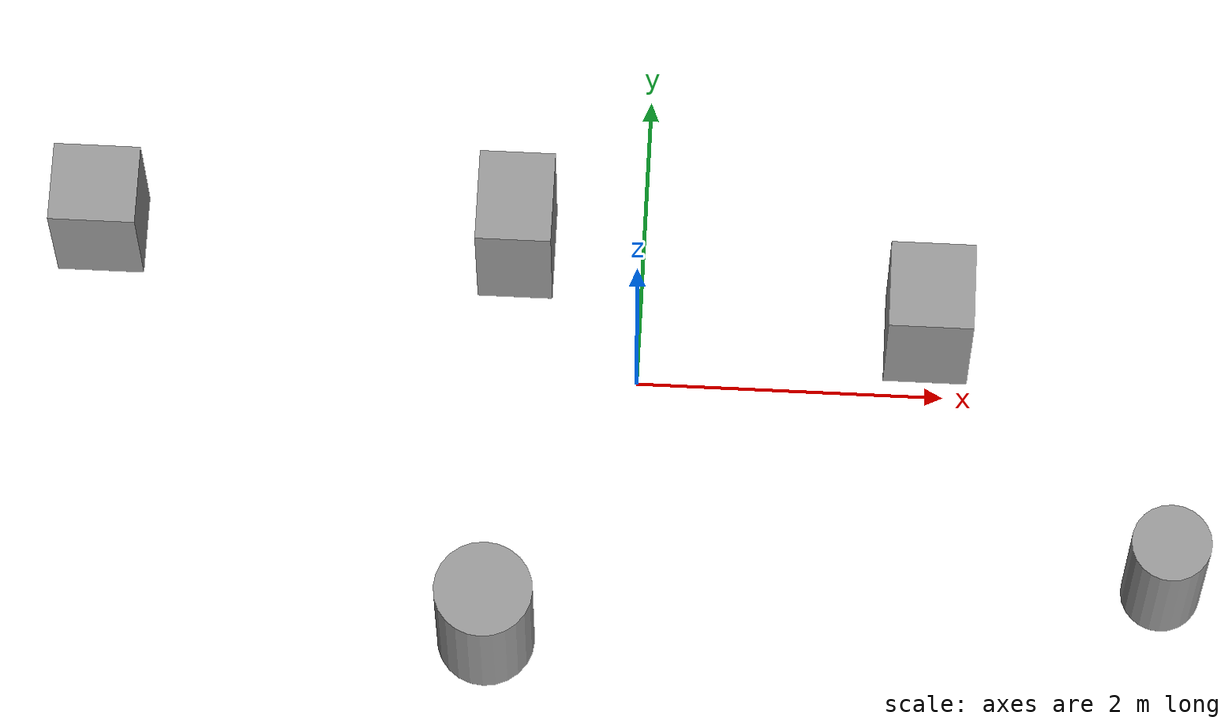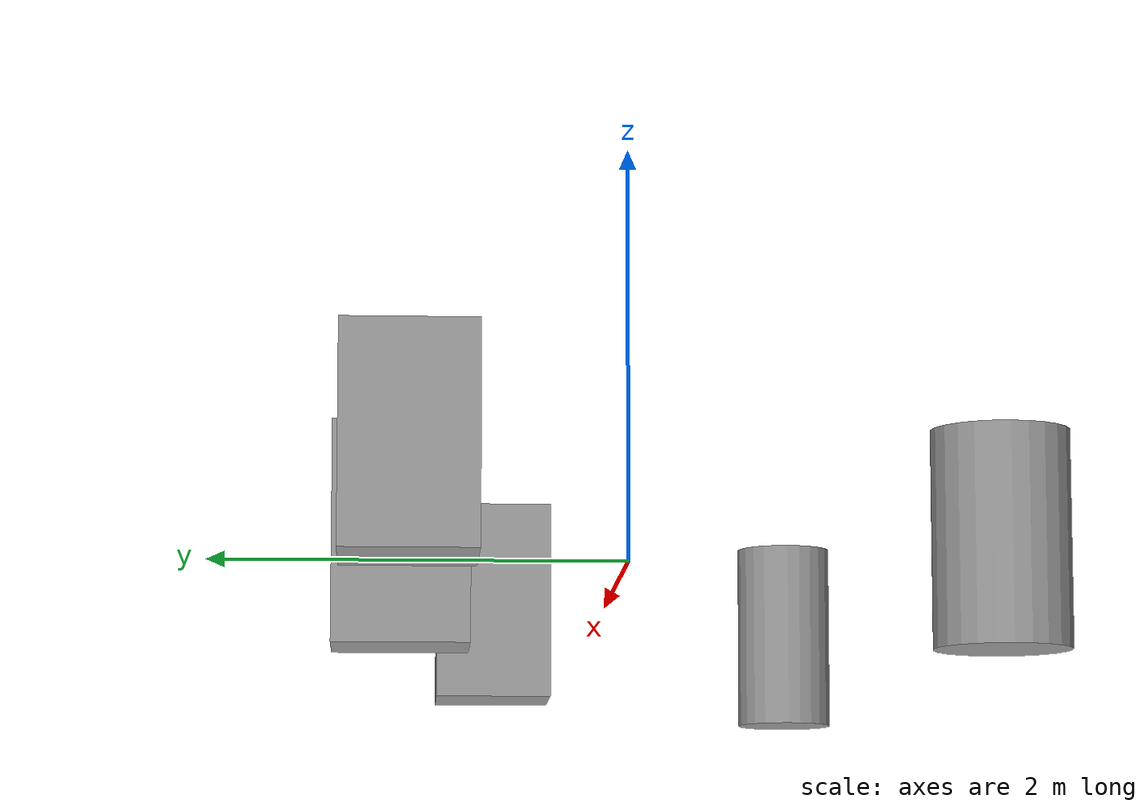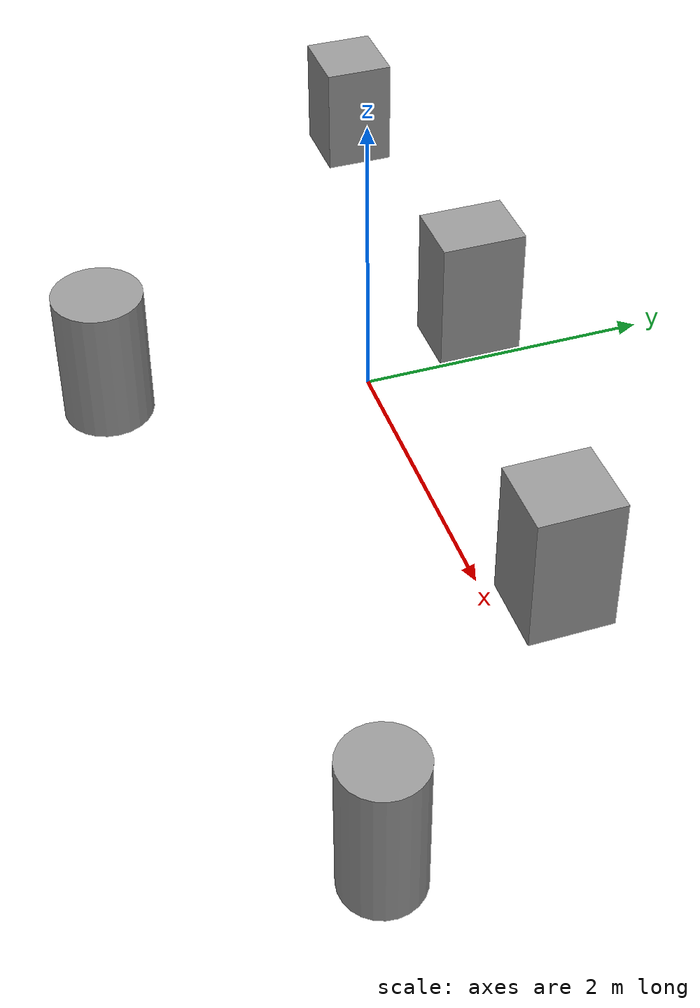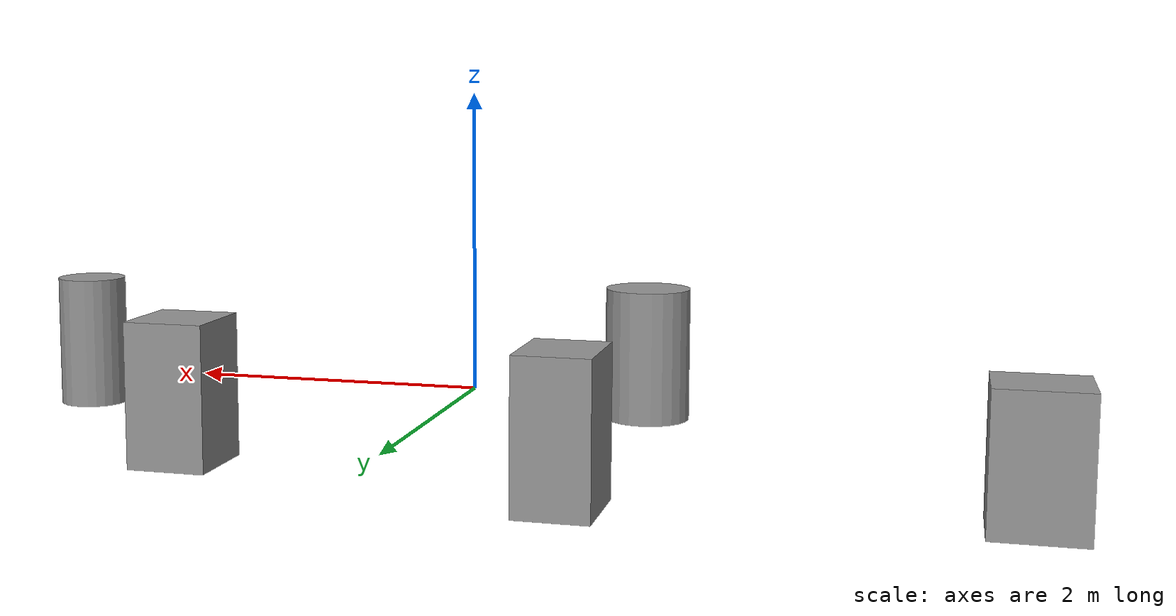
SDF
<?xml version='1.0'?>
<sdf version='1.7'>
  <model name='object_room'>
    <link name='link_0'>
      <inertial>
        <mass>0.265206</mass>
        <inertia>
          <ixx>0.0229739</ixx>
          <ixy>0</ixy>
          <ixz>0</ixz>
          <iyy>0.0238423</iyy>
          <iyz>0</iyz>
          <izz>0.0135381</izz>
        </inertia>
        <pose>0 0 0 0 -0 0</pose>
      </inertial>
      <pose>-3.616 1.06808 0 0 -0 0</pose>
      <visual name='visual'>
        <pose>0 0 0 0 -0 0</pose>
        <geometry>
          <box>
            <size>0.570906 0.535385 0.867686</size>
          </box>
        </geometry>
        <material>
          <lighting>1</lighting>
          <script>
            <uri>file://media/materials/scripts/gazebo.material</uri>
            <name>Gazebo/Grey</name>
          </script>
          <shader type='pixel'/>
        </material>
        <transparency>0</transparency>
        <cast_shadows>1</cast_shadows>
      </visual>
      <collision name='collision'>
        <laser_retro>0</laser_retro>
        <max_contacts>10</max_contacts>
        <pose>0 0 0 0 -0 0</pose>
        <geometry>
          <box>
            <size>0.570906 0.535385 0.867686</size>
          </box>
        </geometry>
        <surface>
          <friction>
            <ode>
              <mu>1</mu>
              <mu2>1</mu2>
              <fdir1>0 0 0</fdir1>
              <slip1>0</slip1>
              <slip2>0</slip2>
            </ode>
            <torsional>
              <coefficient>1</coefficient>
              <patch_radius>0</patch_radius>
              <surface_radius>0</surface_radius>
              <use_patch_radius>1</use_patch_radius>
              <ode>
                <slip>0</slip>
              </ode>
            </torsional>
          </friction>
          <bounce>
            <restitution_coefficient>0</restitution_coefficient>
            <threshold>1e+06</threshold>
          </bounce>
          <contact>
            <collide_without_contact>0</collide_without_contact>
            <collide_without_contact_bitmask>1</collide_without_contact_bitmask>
            <collide_bitmask>1</collide_bitmask>
            <ode>
              <soft_cfm>0</soft_cfm>
              <soft_erp>0.2</soft_erp>
              <kp>1e+13</kp>
              <kd>1</kd>
              <max_vel>0.01</max_vel>
              <min_depth>0</min_depth>
            </ode>
            <bullet>
              <split_impulse>1</split_impulse>
              <split_impulse_penetration_threshold>-0.01</split_impulse_penetration_threshold>
              <soft_cfm>0</soft_cfm>
              <soft_erp>0.2</soft_erp>
              <kp>1e+13</kp>
              <kd>1</kd>
            </bullet>
          </contact>
        </surface>
      </collision>
    </link>
    <link name='link_1'>
      <inertial>
        <mass>0.308886</mass>
        <inertia>
          <ixx>0.0356944</ixx>
          <ixy>0</ixy>
          <ixz>0</ixz>
          <iyy>0.0320914</iyy>
          <iyz>0</iyz>
          <izz>0.0163048</izz>
        </inertia>
        <pose>0 0 0 0 -0 0</pose>
      </inertial>
      <pose>-0.851352 1.08492 0 0 -0 0</pose>
      <visual name='visual'>
        <pose>0 0 0 0 -0 0</pose>
        <geometry>
          <box>
            <size>0.496716 0.621854 1</size>
          </box>
        </geometry>
        <material>
          <lighting>1</lighting>
          <script>
            <uri>file://media/materials/scripts/gazebo.material</uri>
            <name>Gazebo/Grey</name>
          </script>
          <shader type='pixel'/>
        </material>
        <transparency>0</transparency>
        <cast_shadows>1</cast_shadows>
      </visual>
      <collision name='collision'>
        <laser_retro>0</laser_retro>
        <max_contacts>10</max_contacts>
        <pose>0 0 0 0 -0 0</pose>
        <geometry>
          <box>
            <size>0.496716 0.621854 1</size>
          </box>
        </geometry>
        <surface>
          <friction>
            <ode>
              <mu>1</mu>
              <mu2>1</mu2>
              <fdir1>0 0 0</fdir1>
              <slip1>0</slip1>
              <slip2>0</slip2>
            </ode>
            <torsional>
              <coefficient>1</coefficient>
              <patch_radius>0</patch_radius>
              <surface_radius>0</surface_radius>
              <use_patch_radius>1</use_patch_radius>
              <ode>
                <slip>0</slip>
              </ode>
            </torsional>
          </friction>
          <bounce>
            <restitution_coefficient>0</restitution_coefficient>
            <threshold>1e+06</threshold>
          </bounce>
          <contact>
            <collide_without_contact>0</collide_without_contact>
            <collide_without_contact_bitmask>1</collide_without_contact_bitmask>
            <collide_bitmask>1</collide_bitmask>
            <ode>
              <soft_cfm>0</soft_cfm>
              <soft_erp>0.2</soft_erp>
              <kp>1e+13</kp>
              <kd>1</kd>
              <max_vel>0.01</max_vel>
              <min_depth>0</min_depth>
            </ode>
            <bullet>
              <split_impulse>1</split_impulse>
              <split_impulse_penetration_threshold>-0.01</split_impulse_penetration_threshold>
              <soft_cfm>0</soft_cfm>
              <soft_erp>0.2</soft_erp>
              <kp>1e+13</kp>
              <kd>1</kd>
            </bullet>
          </contact>
        </surface>
      </collision>
    </link>
    <link name='link_2'>
      <inertial>
        <mass>0.32546</mass>
        <inertia>
          <ixx>0.0364948</ixx>
          <ixy>0</ixy>
          <ixz>0</ixz>
          <iyy>0.0354341</iyy>
          <iyz>0</iyz>
          <izz>0.0176856</izz>
        </inertia>
        <pose>0 0 0 0 -0 0</pose>
      </inertial>
      <pose>1.89456 0.5923 0 0 -0 0</pose>
      <visual name='visual'>
        <pose>0 0 0 0 -0 0</pose>
        <geometry>
          <box>
            <size>0.553614 0.587873 1</size>
          </box>
        </geometry>
        <material>
          <lighting>1</lighting>
          <script>
            <uri>file://media/materials/scripts/gazebo.material</uri>
            <name>Gazebo/Grey</name>
          </script>
          <shader type='pixel'/>
        </material>
        <transparency>0</transparency>
        <cast_shadows>1</cast_shadows>
      </visual>
      <collision name='collision'>
        <laser_retro>0</laser_retro>
        <max_contacts>10</max_contacts>
        <pose>0 0 0 0 -0 0</pose>
        <geometry>
          <box>
            <size>0.553614 0.587873 1</size>
          </box>
        </geometry>
        <surface>
          <friction>
            <ode>
              <mu>1</mu>
              <mu2>1</mu2>
              <fdir1>0 0 0</fdir1>
              <slip1>0</slip1>
              <slip2>0</slip2>
            </ode>
            <torsional>
              <coefficient>1</coefficient>
              <patch_radius>0</patch_radius>
              <surface_radius>0</surface_radius>
              <use_patch_radius>1</use_patch_radius>
              <ode>
                <slip>0</slip>
              </ode>
            </torsional>
          </friction>
          <bounce>
            <restitution_coefficient>0</restitution_coefficient>
            <threshold>1e+06</threshold>
          </bounce>
          <contact>
            <collide_without_contact>0</collide_without_contact>
            <collide_without_contact_bitmask>1</collide_without_contact_bitmask>
            <collide_bitmask>1</collide_bitmask>
            <ode>
              <soft_cfm>0</soft_cfm>
              <soft_erp>0.2</soft_erp>
              <kp>1e+13</kp>
              <kd>1</kd>
              <max_vel>0.01</max_vel>
              <min_depth>0</min_depth>
            </ode>
            <bullet>
              <split_impulse>1</split_impulse>
              <split_impulse_penetration_threshold>-0.01</split_impulse_penetration_threshold>
              <soft_cfm>0</soft_cfm>
              <soft_erp>0.2</soft_erp>
              <kp>1e+13</kp>
              <kd>1</kd>
            </bullet>
          </contact>
        </surface>
      </collision>
    </link>
    <link name='link_5'>
      <inertial>
        <mass>0.406275</mass>
        <inertia>
          <ixx>0.0441725</ixx>
          <ixy>0</ixy>
          <ixz>0</ixz>
          <iyy>0.0441725</iyy>
          <iyz>0</iyz>
          <izz>0.0206325</izz>
        </inertia>
        <pose>0 0 0 0 -0 0</pose>
      </inertial>
      <pose>-0.905923 -1.63754 0 0 -0 0</pose>
      <visual name='visual'>
        <pose>0 0 0 0 -0 0</pose>
        <geometry>
          <cylinder>
            <radius>0.3187</radius>
            <length>1</length>
          </cylinder>
        </geometry>
        <material>
          <lighting>1</lighting>
          <script>
            <uri>file://media/materials/scripts/gazebo.material</uri>
            <name>Gazebo/Grey</name>
          </script>
          <shader type='pixel'/>
        </material>
        <transparency>0</transparency>
        <cast_shadows>1</cast_shadows>
      </visual>
      <collision name='collision'>
        <laser_retro>0</laser_retro>
        <max_contacts>10</max_contacts>
        <pose>0 0 0 0 -0 0</pose>
        <geometry>
          <cylinder>
            <radius>0.3187</radius>
            <length>1</length>
          </cylinder>
        </geometry>
        <surface>
          <friction>
            <ode>
              <mu>1</mu>
              <mu2>1</mu2>
              <fdir1>0 0 0</fdir1>
              <slip1>0</slip1>
              <slip2>0</slip2>
            </ode>
            <torsional>
              <coefficient>1</coefficient>
              <patch_radius>0</patch_radius>
              <surface_radius>0</surface_radius>
              <use_patch_radius>1</use_patch_radius>
              <ode>
                <slip>0</slip>
              </ode>
            </torsional>
          </friction>
          <bounce>
            <restitution_coefficient>0</restitution_coefficient>
            <threshold>1e+06</threshold>
          </bounce>
          <contact>
            <collide_without_contact>0</collide_without_contact>
            <collide_without_contact_bitmask>1</collide_without_contact_bitmask>
            <collide_bitmask>1</collide_bitmask>
            <ode>
              <soft_cfm>0</soft_cfm>
              <soft_erp>0.2</soft_erp>
              <kp>1e+13</kp>
              <kd>1</kd>
              <max_vel>0.01</max_vel>
              <min_depth>0</min_depth>
            </ode>
            <bullet>
              <split_impulse>1</split_impulse>
              <split_impulse_penetration_threshold>-0.01</split_impulse_penetration_threshold>
              <soft_cfm>0</soft_cfm>
              <soft_erp>0.2</soft_erp>
              <kp>1e+13</kp>
              <kd>1</kd>
            </bullet>
          </contact>
        </surface>
      </collision>
    </link>
    <link name='link_6'>
      <inertial>
        <mass>0.2668</mass>
        <inertia>
          <ixx>0.0266821</ixx>
          <ixy>0</ixy>
          <ixz>0</ixz>
          <iyy>0.0266821</iyy>
          <iyz>0</iyz>
          <izz>0.00889752</izz>
        </inertia>
        <pose>0 0 0 0 -0 0</pose>
      </inertial>
      <pose>3.47873 -1.10776 0 0 -0 0</pose>
      <visual name='visual'>
        <pose>0 0 0 0 -0 0</pose>
        <geometry>
          <cylinder>
            <radius>0.25826</radius>
            <length>1</length>
          </cylinder>
        </geometry>
        <material>
          <lighting>1</lighting>
          <script>
            <uri>file://media/materials/scripts/gazebo.material</uri>
            <name>Gazebo/Grey</name>
          </script>
          <shader type='pixel'/>
        </material>
        <transparency>0</transparency>
        <cast_shadows>1</cast_shadows>
      </visual>
      <collision name='collision'>
        <laser_retro>0</laser_retro>
        <max_contacts>10</max_contacts>
        <pose>0 0 0 0 -0 0</pose>
        <geometry>
          <cylinder>
            <radius>0.25826</radius>
            <length>1</length>
          </cylinder>
        </geometry>
        <surface>
          <friction>
            <ode>
              <mu>1</mu>
              <mu2>1</mu2>
              <fdir1>0 0 0</fdir1>
              <slip1>0</slip1>
              <slip2>0</slip2>
            </ode>
            <torsional>
              <coefficient>1</coefficient>
              <patch_radius>0</patch_radius>
              <surface_radius>0</surface_radius>
              <use_patch_radius>1</use_patch_radius>
              <ode>
                <slip>0</slip>
              </ode>
            </torsional>
          </friction>
          <bounce>
            <restitution_coefficient>0</restitution_coefficient>
            <threshold>1e+06</threshold>
          </bounce>
          <contact>
            <collide_without_contact>0</collide_without_contact>
            <collide_without_contact_bitmask>1</collide_without_contact_bitmask>
            <collide_bitmask>1</collide_bitmask>
            <ode>
              <soft_cfm>0</soft_cfm>
              <soft_erp>0.2</soft_erp>
              <kp>1e+13</kp>
              <kd>1</kd>
              <max_vel>0.01</max_vel>
              <min_depth>0</min_depth>
            </ode>
            <bullet>
              <split_impulse>1</split_impulse>
              <split_impulse_penetration_threshold>-0.01</split_impulse_penetration_threshold>
              <soft_cfm>0</soft_cfm>
              <soft_erp>0.2</soft_erp>
              <kp>1e+13</kp>
              <kd>1</kd>
            </bullet>
          </contact>
        </surface>
      </collision>
    </link>
    <static>0</static>
    <allow_auto_disable>1</allow_auto_disable>
  </model>
</sdf>
